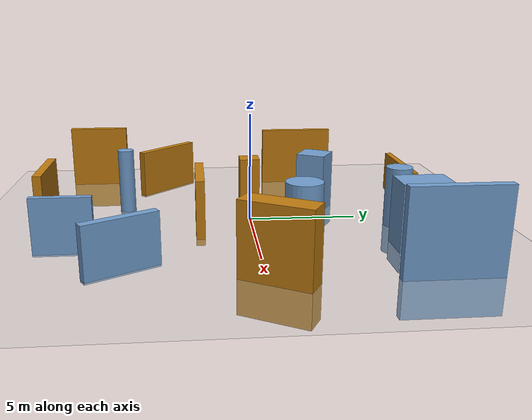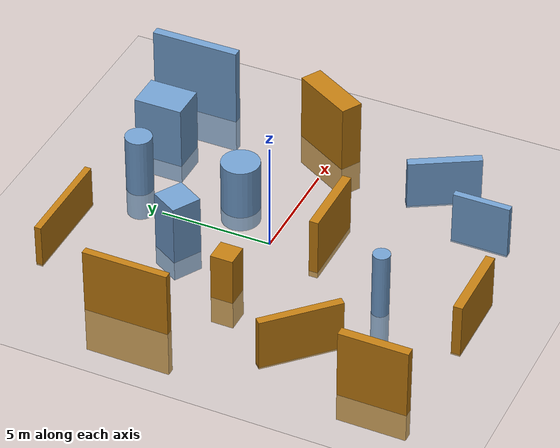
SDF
<sdf version="1.7">
 <world name="default">
  <light name="sun" type="directional">
   <pose>0 0 10 0 -0 0</pose>
   <diffuse>0.8 0.8 0.8 1</diffuse>
   <specular>0.2 0.2 0.2 1</specular>
   <attenuation>
    <range>1000</range>
    <constant>0.9</constant>
    <linear>0.01</linear>
    <quadratic>0.001</quadratic>
   </attenuation>
   <direction>-0.5 0.1 -0.9</direction>
   <spot><inner_angle>0</inner_angle><outer_angle>0</outer_angle><falloff>0</falloff></spot>
  </light>
  <model name="ground_plane">
   <static>1</static>
   <link name="link">
    <collision name="collision">
     <geometry><plane><normal>0 0 1</normal><size>100 100</size></plane></geometry>
     <surface><friction><ode><mu>100</mu><mu2>50</mu2></ode></friction></surface>
    </collision>
    <visual name="visual">
     <cast_shadows>0</cast_shadows>
     <geometry><plane><normal>0 0 1</normal><size>100 100</size></plane></geometry>
     <material>
      <script><uri>file://media/materials/scripts/gazebo.material</uri><name>Gazebo/Grey</name></script>
     </material>
    </visual>
   </link>
  </model>
  <gravity>0 0 -9.8</gravity>
  <magnetic_field>6e-06 2.3e-05 -4.2e-05</magnetic_field>
  <atmosphere type="adiabatic"/>
  <physics name="default_physics" default="0" type="ode">
   <max_step_size>0.001</max_step_size>
   <real_time_factor>1</real_time_factor>
   <real_time_update_rate>1000</real_time_update_rate>
  </physics>
  <scene><ambient>0.4 0.4 0.4 1</ambient><background>0.7 0.7 0.7 1</background><shadows>1</shadows></scene>
  <spherical_coordinates>
   <surface_model>EARTH_WGS84</surface_model>
   <latitude_deg>0</latitude_deg>
   <longitude_deg>0</longitude_deg>
   <elevation>0</elevation>
   <heading_deg>0</heading_deg>
  </spherical_coordinates>
  <model name="wall_orange_1">
   <static>1</static>
   <link name="link">
    <inertial>
     <mass>1</mass>
     <inertia><ixx>0.145833</ixx><ixy>0</ixy><ixz>0</ixz><iyy>0.145833</iyy><iyz>0</iyz><izz>0.125</izz></inertia>
    </inertial>
    <visual name="visual">
     <geometry><box><size>4.5 0.3 2</size></box></geometry>
     <material>
      <script><name>Gazebo/Grey</name><uri>file://media/materials/scripts/gazebo.material</uri></script>
      <ambient>0.757 0.49 0.067 1</ambient>
      <diffuse>0.7 0.7 0.7 1</diffuse>
      <specular>0.01 0.01 0.01 1</specular>
      <emissive>0 0 0 1</emissive>
     </material>
    </visual>
    <collision name="collision">
     <geometry><box><size>4.5 0.3 2</size></box></geometry>
     <surface>
      <friction>
       <ode><mu>1</mu><mu2>1</mu2><fdir1>0 0 0</fdir1><slip1>0</slip1><slip2>0</slip2></ode>
       <torsional>
        <coefficient>1</coefficient>
        <patch_radius>0</patch_radius>
        <surface_radius>0</surface_radius>
        <use_patch_radius>1</use_patch_radius>
        <ode><slip>0</slip></ode>
       </torsional>
      </friction>
      <bounce><restitution_coefficient>0</restitution_coefficient><threshold>1e+06</threshold></bounce>
      <contact>
       <collide_without_contact>0</collide_without_contact>
       <collide_without_contact_bitmask>1</collide_without_contact_bitmask>
       <collide_bitmask>1</collide_bitmask>
       <ode>
        <soft_cfm>0</soft_cfm>
        <soft_erp>0.2</soft_erp>
        <kp>1e+13</kp>
        <kd>1</kd>
        <max_vel>0.01</max_vel>
        <min_depth>0</min_depth>
       </ode>
       <bullet>
        <split_impulse>1</split_impulse>
        <split_impulse_penetration_threshold>-0.01</split_impulse_penetration_threshold>
        <soft_cfm>0</soft_cfm>
        <soft_erp>0.2</soft_erp>
        <kp>1e+13</kp>
        <kd>1</kd>
       </bullet>
      </contact>
     </surface>
    </collision>
   </link>
   <pose>-2.91539 8.15887 0.9 0 -0 0</pose>
  </model>
  <model name="wall_blue_2">
   <static>1</static>
   <link name="link">
    <inertial>
     <mass>1</mass>
     <inertia><ixx>0.145833</ixx><ixy>0</ixy><ixz>0</ixz><iyy>0.145833</iyy><iyz>0</iyz><izz>0.125</izz></inertia>
    </inertial>
    <visual name="visual">
     <geometry><box><size>4 0.4 5.22872</size></box></geometry>
     <material>
      <script><name>Gazebo/Grey</name><uri>file://media/materials/scripts/gazebo.material</uri></script>
      <ambient>0.447 0.624 0.812 1</ambient>
      <diffuse>0.7 0.7 0.7 1</diffuse>
      <specular>0.01 0.01 0.01 1</specular>
      <emissive>0 0 0 1</emissive>
     </material>
    </visual>
    <collision name="collision">
     <geometry><box><size>4 0.4 5.22872</size></box></geometry>
     <surface>
      <friction>
       <ode><mu>1</mu><mu2>1</mu2><fdir1>0 0 0</fdir1><slip1>0</slip1><slip2>0</slip2></ode>
       <torsional>
        <coefficient>1</coefficient>
        <patch_radius>0</patch_radius>
        <surface_radius>0</surface_radius>
        <use_patch_radius>1</use_patch_radius>
        <ode><slip>0</slip></ode>
       </torsional>
      </friction>
      <bounce><restitution_coefficient>0</restitution_coefficient><threshold>1e+06</threshold></bounce>
      <contact>
       <collide_without_contact>0</collide_without_contact>
       <collide_without_contact_bitmask>1</collide_without_contact_bitmask>
       <collide_bitmask>1</collide_bitmask>
       <ode>
        <soft_cfm>0</soft_cfm>
        <soft_erp>0.2</soft_erp>
        <kp>1e+13</kp>
        <kd>1</kd>
        <max_vel>0.01</max_vel>
        <min_depth>0</min_depth>
       </ode>
       <bullet>
        <split_impulse>1</split_impulse>
        <split_impulse_penetration_threshold>-0.01</split_impulse_penetration_threshold>
        <soft_cfm>0</soft_cfm>
        <soft_erp>0.2</soft_erp>
        <kp>1e+13</kp>
        <kd>1</kd>
       </bullet>
      </contact>
     </surface>
    </collision>
   </link>
   <pose>7.36889 6.97436 1 0 -0 1.5708</pose>
  </model>
  <model name="cube_orange_7">
   <static>1</static>
   <link name="link">
    <inertial>
     <mass>1</mass>
     <inertia><ixx>0.145833</ixx><ixy>0</ixy><ixz>0</ixz><iyy>0.145833</iyy><iyz>0</iyz><izz>0.125</izz></inertia>
    </inertial>
    <visual name="visual">
     <geometry><box><size>1 1 3.5129</size></box></geometry>
     <material>
      <script><name>Gazebo/Grey</name><uri>file://media/materials/scripts/gazebo.material</uri></script>
      <ambient>0.757 0.49 0.067 1</ambient>
      <diffuse>0.7 0.7 0.7 1</diffuse>
      <specular>0.01 0.01 0.01 1</specular>
      <emissive>0 0 0 1</emissive>
     </material>
    </visual>
    <collision name="collision">
     <geometry><box><size>1 1 3.5129</size></box></geometry>
     <surface>
      <friction>
       <ode><mu>1</mu><mu2>1</mu2><fdir1>0 0 0</fdir1><slip1>0</slip1><slip2>0</slip2></ode>
       <torsional>
        <coefficient>1</coefficient>
        <patch_radius>0</patch_radius>
        <surface_radius>0</surface_radius>
        <use_patch_radius>1</use_patch_radius>
        <ode><slip>0</slip></ode>
       </torsional>
      </friction>
      <bounce><restitution_coefficient>0</restitution_coefficient><threshold>1e+06</threshold></bounce>
      <contact>
       <collide_without_contact>0</collide_without_contact>
       <collide_without_contact_bitmask>1</collide_without_contact_bitmask>
       <collide_bitmask>1</collide_bitmask>
       <ode>
        <soft_cfm>0</soft_cfm>
        <soft_erp>0.2</soft_erp>
        <kp>1e+13</kp>
        <kd>1</kd>
        <max_vel>0.01</max_vel>
        <min_depth>0</min_depth>
       </ode>
       <bullet>
        <split_impulse>1</split_impulse>
        <split_impulse_penetration_threshold>-0.01</split_impulse_penetration_threshold>
        <soft_cfm>0</soft_cfm>
        <soft_erp>0.2</soft_erp>
        <kp>1e+13</kp>
        <kd>1</kd>
       </bullet>
      </contact>
     </surface>
    </collision>
   </link>
   <pose>-3.58865 0.273629 0.4 0 -0 0</pose>
  </model>
  <model name="box_blue_8">
   <static>1</static>
   <link name="link">
    <inertial>
     <mass>1</mass>
     <inertia><ixx>0.145833</ixx><ixy>0</ixy><ixz>0</ixz><iyy>0.145833</iyy><iyz>0</iyz><izz>0.125</izz></inertia>
    </inertial>
    <visual name="visual">
     <geometry><box><size>1.39471 1.35582 3.70616</size></box></geometry>
     <material>
      <script><name>Gazebo/Grey</name><uri>file://media/materials/scripts/gazebo.material</uri></script>
      <ambient>0.447 0.624 0.812 1</ambient>
      <diffuse>0.7 0.7 0.7 1</diffuse>
      <specular>0.01 0.01 0.01 1</specular>
      <emissive>0 0 0 1</emissive>
     </material>
    </visual>
    <collision name="collision">
     <geometry><box><size>1.39471 1.35582 3.70616</size></box></geometry>
     <surface>
      <friction>
       <ode><mu>1</mu><mu2>1</mu2><fdir1>0 0 0</fdir1><slip1>0</slip1><slip2>0</slip2></ode>
       <torsional>
        <coefficient>1</coefficient>
        <patch_radius>0</patch_radius>
        <surface_radius>0</surface_radius>
        <use_patch_radius>1</use_patch_radius>
        <ode><slip>0</slip></ode>
       </torsional>
      </friction>
      <bounce><restitution_coefficient>0</restitution_coefficient><threshold>1e+06</threshold></bounce>
      <contact>
       <collide_without_contact>0</collide_without_contact>
       <collide_without_contact_bitmask>1</collide_without_contact_bitmask>
       <collide_bitmask>1</collide_bitmask>
       <ode>
        <soft_cfm>0</soft_cfm>
        <soft_erp>0.2</soft_erp>
        <kp>1e+13</kp>
        <kd>1</kd>
        <max_vel>0.01</max_vel>
        <min_depth>0</min_depth>
       </ode>
       <bullet>
        <split_impulse>1</split_impulse>
        <split_impulse_penetration_threshold>-0.01</split_impulse_penetration_threshold>
        <soft_cfm>0</soft_cfm>
        <soft_erp>0.2</soft_erp>
        <kp>1e+13</kp>
        <kd>1</kd>
       </bullet>
      </contact>
     </surface>
    </collision>
   </link>
   <pose>-1.82481 3.37336 0.9 0 -0 1.0472</pose>
  </model>
  <model name="cylinder_blue_10">
   <static>1</static>
   <link name="link">
    <inertial>
     <mass>1</mass>
     <inertia><ixx>0.145833</ixx><ixy>0</ixy><ixz>0</ixz><iyy>0.145833</iyy><iyz>0</iyz><izz>0.125</izz></inertia>
    </inertial>
    <visual name="visual">
     <geometry><cylinder><radius>0.859905</radius><length>3.05437</length></cylinder></geometry>
     <material>
      <script><name>Gazebo/Grey</name><uri>file://media/materials/scripts/gazebo.material</uri></script>
      <ambient>0.447 0.624 0.812 1</ambient>
      <diffuse>0.7 0.7 0.7 1</diffuse>
      <specular>0.01 0.01 0.01 1</specular>
      <emissive>0 0 0 1</emissive>
     </material>
    </visual>
    <collision name="collision">
     <geometry><cylinder><radius>0.859905</radius><length>3.05437</length></cylinder></geometry>
     <surface>
      <friction>
       <ode><mu>1</mu><mu2>1</mu2><fdir1>0 0 0</fdir1><slip1>0</slip1><slip2>0</slip2></ode>
       <torsional>
        <coefficient>1</coefficient>
        <patch_radius>0</patch_radius>
        <surface_radius>0</surface_radius>
        <use_patch_radius>1</use_patch_radius>
        <ode><slip>0</slip></ode>
       </torsional>
      </friction>
      <bounce><restitution_coefficient>0</restitution_coefficient><threshold>1e+06</threshold></bounce>
      <contact>
       <collide_without_contact>0</collide_without_contact>
       <collide_without_contact_bitmask>1</collide_without_contact_bitmask>
       <collide_bitmask>1</collide_bitmask>
       <ode>
        <soft_cfm>0</soft_cfm>
        <soft_erp>0.2</soft_erp>
        <kp>1e+13</kp>
        <kd>1</kd>
        <max_vel>0.01</max_vel>
        <min_depth>0</min_depth>
       </ode>
       <bullet>
        <split_impulse>1</split_impulse>
        <split_impulse_penetration_threshold>-0.01</split_impulse_penetration_threshold>
        <soft_cfm>0</soft_cfm>
        <soft_erp>0.2</soft_erp>
        <kp>1e+13</kp>
        <kd>1</kd>
       </bullet>
      </contact>
     </surface>
    </collision>
   </link>
   <pose>1.89929 2.24516 0.8 0 -0 0</pose>
  </model>
  <model name="wall_blue_12">
   <static>1</static>
   <link name="link">
    <inertial>
     <mass>1</mass>
     <inertia><ixx>0.145833</ixx><ixy>0</ixy><ixz>0</ixz><iyy>0.145833</iyy><iyz>0</iyz><izz>0.125</izz></inertia>
    </inertial>
    <visual name="visual">
     <geometry><box><size>2.52011 0.3 2.5</size></box></geometry>
     <material>
      <script><name>Gazebo/Grey</name><uri>file://media/materials/scripts/gazebo.material</uri></script>
      <ambient>0.447 0.624 0.812 1</ambient>
      <diffuse>0.7 0.7 0.7 1</diffuse>
      <specular>0.01 0.01 0.01 1</specular>
      <emissive>0 0 0 1</emissive>
     </material>
    </visual>
    <collision name="collision">
     <geometry><box><size>2.52011 0.3 2.5</size></box></geometry>
     <surface>
      <friction>
       <ode><mu>1</mu><mu2>1</mu2><fdir1>0 0 0</fdir1><slip1>0</slip1><slip2>0</slip2></ode>
       <torsional>
        <coefficient>1</coefficient>
        <patch_radius>0</patch_radius>
        <surface_radius>0</surface_radius>
        <use_patch_radius>1</use_patch_radius>
        <ode><slip>0</slip></ode>
       </torsional>
      </friction>
      <bounce><restitution_coefficient>0</restitution_coefficient><threshold>1e+06</threshold></bounce>
      <contact>
       <collide_without_contact>0</collide_without_contact>
       <collide_without_contact_bitmask>1</collide_without_contact_bitmask>
       <collide_bitmask>1</collide_bitmask>
       <ode>
        <soft_cfm>0</soft_cfm>
        <soft_erp>0.2</soft_erp>
        <kp>1e+13</kp>
        <kd>1</kd>
        <max_vel>0.01</max_vel>
        <min_depth>0</min_depth>
       </ode>
       <bullet>
        <split_impulse>1</split_impulse>
        <split_impulse_penetration_threshold>-0.01</split_impulse_penetration_threshold>
        <soft_cfm>0</soft_cfm>
        <soft_erp>0.2</soft_erp>
        <kp>1e+13</kp>
        <kd>1</kd>
       </bullet>
      </contact>
     </surface>
    </collision>
   </link>
   <pose>3.65135 -8.01208 1.15 0 -0 1.5708</pose>
  </model>
  <model name="wall_blue_14">
   <static>1</static>
   <link name="link">
    <inertial>
     <mass>1</mass>
     <inertia><ixx>0.145833</ixx><ixy>0</ixy><ixz>0</ixz><iyy>0.145833</iyy><iyz>0</iyz><izz>0.125</izz></inertia>
    </inertial>
    <visual name="visual">
     <geometry><box><size>3.2 0.4 2.3</size></box></geometry>
     <material>
      <script><name>Gazebo/Grey</name><uri>file://media/materials/scripts/gazebo.material</uri></script>
      <ambient>0.447 0.624 0.812 1</ambient>
      <diffuse>0.7 0.7 0.7 1</diffuse>
      <specular>0.01 0.01 0.01 1</specular>
      <emissive>0 0 0 1</emissive>
     </material>
    </visual>
    <collision name="collision">
     <geometry><box><size>3.2 0.4 2.3</size></box></geometry>
     <surface>
      <friction>
       <ode><mu>1</mu><mu2>1</mu2><fdir1>0 0 0</fdir1><slip1>0</slip1><slip2>0</slip2></ode>
       <torsional>
        <coefficient>1</coefficient>
        <patch_radius>0</patch_radius>
        <surface_radius>0</surface_radius>
        <use_patch_radius>1</use_patch_radius>
        <ode><slip>0</slip></ode>
       </torsional>
      </friction>
      <bounce><restitution_coefficient>0</restitution_coefficient><threshold>1e+06</threshold></bounce>
      <contact>
       <collide_without_contact>0</collide_without_contact>
       <collide_without_contact_bitmask>1</collide_without_contact_bitmask>
       <collide_bitmask>1</collide_bitmask>
       <ode>
        <soft_cfm>0</soft_cfm>
        <soft_erp>0.2</soft_erp>
        <kp>1e+13</kp>
        <kd>1</kd>
        <max_vel>0.01</max_vel>
        <min_depth>0</min_depth>
       </ode>
       <bullet>
        <split_impulse>1</split_impulse>
        <split_impulse_penetration_threshold>-0.01</split_impulse_penetration_threshold>
        <soft_cfm>0</soft_cfm>
        <soft_erp>0.2</soft_erp>
        <kp>1e+13</kp>
        <kd>1</kd>
       </bullet>
      </contact>
     </surface>
    </collision>
   </link>
   <pose>5.7975 -5.45618 1.05 0 -0 2.0944</pose>
  </model>
  <model name="wall_orange_15">
   <static>1</static>
   <link name="link">
    <inertial>
     <mass>1</mass>
     <inertia><ixx>0.145833</ixx><ixy>0</ixy><ixz>0</ixz><iyy>0.145833</iyy><iyz>0</iyz><izz>0.125</izz></inertia>
    </inertial>
    <visual name="visual">
     <geometry><box><size>3.6311 0.35 2.4</size></box></geometry>
     <material>
      <script><name>Gazebo/Grey</name><uri>file://media/materials/scripts/gazebo.material</uri></script>
      <ambient>0.757 0.49 0.067 1</ambient>
      <diffuse>0.7 0.7 0.7 1</diffuse>
      <specular>0.01 0.01 0.01 1</specular>
      <emissive>0 0 0 1</emissive>
     </material>
    </visual>
    <collision name="collision">
     <geometry><box><size>3.6311 0.35 2.4</size></box></geometry>
     <surface>
      <friction>
       <ode><mu>1</mu><mu2>1</mu2><fdir1>0 0 0</fdir1><slip1>0</slip1><slip2>0</slip2></ode>
       <torsional>
        <coefficient>1</coefficient>
        <patch_radius>0</patch_radius>
        <surface_radius>0</surface_radius>
        <use_patch_radius>1</use_patch_radius>
        <ode><slip>0</slip></ode>
       </torsional>
      </friction>
      <bounce><restitution_coefficient>0</restitution_coefficient><threshold>1e+06</threshold></bounce>
      <contact>
       <collide_without_contact>0</collide_without_contact>
       <collide_without_contact_bitmask>1</collide_without_contact_bitmask>
       <collide_bitmask>1</collide_bitmask>
       <ode>
        <soft_cfm>0</soft_cfm>
        <soft_erp>0.2</soft_erp>
        <kp>1e+13</kp>
        <kd>1</kd>
        <max_vel>0.01</max_vel>
        <min_depth>0</min_depth>
       </ode>
       <bullet>
        <split_impulse>1</split_impulse>
        <split_impulse_penetration_threshold>-0.01</split_impulse_penetration_threshold>
        <soft_cfm>0</soft_cfm>
        <soft_erp>0.2</soft_erp>
        <kp>1e+13</kp>
        <kd>1</kd>
       </bullet>
      </contact>
     </surface>
    </collision>
   </link>
   <pose>-5.82883 -4.03476 1.1 0 0 -0.7854</pose>
  </model>
  <model name="wall_orange_17">
   <static>1</static>
   <link name="link">
    <inertial>
     <mass>1</mass>
     <inertia><ixx>0.145833</ixx><ixy>0</ixy><ixz>0</ixz><iyy>0.145833</iyy><iyz>0</iyz><izz>0.125</izz></inertia>
    </inertial>
    <visual name="visual">
     <geometry><box><size>3 0.4 4.48878</size></box></geometry>
     <material>
      <script><name>Gazebo/Grey</name><uri>file://media/materials/scripts/gazebo.material</uri></script>
      <ambient>0.757 0.49 0.067 1</ambient>
      <diffuse>0.7 0.7 0.7 1</diffuse>
      <specular>0.01 0.01 0.01 1</specular>
      <emissive>0 0 0 1</emissive>
     </material>
    </visual>
    <collision name="collision">
     <geometry><box><size>3 0.4 4.48878</size></box></geometry>
     <surface>
      <friction>
       <ode><mu>1</mu><mu2>1</mu2><fdir1>0 0 0</fdir1><slip1>0</slip1><slip2>0</slip2></ode>
       <torsional>
        <coefficient>1</coefficient>
        <patch_radius>0</patch_radius>
        <surface_radius>0</surface_radius>
        <use_patch_radius>1</use_patch_radius>
        <ode><slip>0</slip></ode>
       </torsional>
      </friction>
      <bounce><restitution_coefficient>0</restitution_coefficient><threshold>1e+06</threshold></bounce>
      <contact>
       <collide_without_contact>0</collide_without_contact>
       <collide_without_contact_bitmask>1</collide_without_contact_bitmask>
       <collide_bitmask>1</collide_bitmask>
       <ode>
        <soft_cfm>0</soft_cfm>
        <soft_erp>0.2</soft_erp>
        <kp>1e+13</kp>
        <kd>1</kd>
        <max_vel>0.01</max_vel>
        <min_depth>0</min_depth>
       </ode>
       <bullet>
        <split_impulse>1</split_impulse>
        <split_impulse_penetration_threshold>-0.01</split_impulse_penetration_threshold>
        <soft_cfm>0</soft_cfm>
        <soft_erp>0.2</soft_erp>
        <kp>1e+13</kp>
        <kd>1</kd>
       </bullet>
      </contact>
     </surface>
    </collision>
   </link>
   <pose>-7.184 -7.82801 0.9 0 -0 1.5708</pose>
  </model>
  <model name="cylinder_blue_18">
   <static>1</static>
   <link name="link">
    <inertial>
     <mass>1</mass>
     <inertia><ixx>0.145833</ixx><ixy>0</ixy><ixz>0</ixz><iyy>0.145833</iyy><iyz>0</iyz><izz>0.125</izz></inertia>
    </inertial>
    <visual name="visual">
     <geometry><cylinder><radius>0.375817</radius><length>4.63427</length></cylinder></geometry>
     <material>
      <script><name>Gazebo/Grey</name><uri>file://media/materials/scripts/gazebo.material</uri></script>
      <ambient>0.447 0.624 0.812 1</ambient>
      <diffuse>0.7 0.7 0.7 1</diffuse>
      <specular>0.01 0.01 0.01 1</specular>
      <emissive>0 0 0 1</emissive>
     </material>
    </visual>
    <collision name="collision">
     <geometry><cylinder><radius>0.375817</radius><length>4.63427</length></cylinder></geometry>
     <surface>
      <friction>
       <ode><mu>1</mu><mu2>1</mu2><fdir1>0 0 0</fdir1><slip1>0</slip1><slip2>0</slip2></ode>
       <torsional>
        <coefficient>1</coefficient>
        <patch_radius>0</patch_radius>
        <surface_radius>0</surface_radius>
        <use_patch_radius>1</use_patch_radius>
        <ode><slip>0</slip></ode>
       </torsional>
      </friction>
      <bounce><restitution_coefficient>0</restitution_coefficient><threshold>1e+06</threshold></bounce>
      <contact>
       <collide_without_contact>0</collide_without_contact>
       <collide_without_contact_bitmask>1</collide_without_contact_bitmask>
       <collide_bitmask>1</collide_bitmask>
       <ode>
        <soft_cfm>0</soft_cfm>
        <soft_erp>0.2</soft_erp>
        <kp>1e+13</kp>
        <kd>1</kd>
        <max_vel>0.01</max_vel>
        <min_depth>0</min_depth>
       </ode>
       <bullet>
        <split_impulse>1</split_impulse>
        <split_impulse_penetration_threshold>-0.01</split_impulse_penetration_threshold>
        <soft_cfm>0</soft_cfm>
        <soft_erp>0.2</soft_erp>
        <kp>1e+13</kp>
        <kd>1</kd>
       </bullet>
      </contact>
     </surface>
    </collision>
   </link>
   <pose>-2.0076 -5.88598 0.7 0 -0 0</pose>
  </model>
  <model name="box_orange_19">
   <static>1</static>
   <link name="link">
    <inertial>
     <mass>1</mass>
     <inertia><ixx>0.145833</ixx><ixy>0</ixy><ixz>0</ixz><iyy>0.145833</iyy><iyz>0</iyz><izz>0.125</izz></inertia>
    </inertial>
    <visual name="visual">
     <geometry><box><size>3 1 4.59009</size></box></geometry>
     <material>
      <script><name>Gazebo/Grey</name><uri>file://media/materials/scripts/gazebo.material</uri></script>
      <ambient>0.757 0.49 0.067 1</ambient>
      <diffuse>0.7 0.7 0.7 1</diffuse>
      <specular>0.01 0.01 0.01 1</specular>
      <emissive>0 0 0 1</emissive>
     </material>
    </visual>
    <collision name="collision">
     <geometry><box><size>3 1 4.59009</size></box></geometry>
     <surface>
      <friction>
       <ode><mu>1</mu><mu2>1</mu2><fdir1>0 0 0</fdir1><slip1>0</slip1><slip2>0</slip2></ode>
       <torsional>
        <coefficient>1</coefficient>
        <patch_radius>0</patch_radius>
        <surface_radius>0</surface_radius>
        <use_patch_radius>1</use_patch_radius>
        <ode><slip>0</slip></ode>
       </torsional>
      </friction>
      <bounce><restitution_coefficient>0</restitution_coefficient><threshold>1e+06</threshold></bounce>
      <contact>
       <collide_without_contact>0</collide_without_contact>
       <collide_without_contact_bitmask>1</collide_without_contact_bitmask>
       <collide_bitmask>1</collide_bitmask>
       <ode>
        <soft_cfm>0</soft_cfm>
        <soft_erp>0.2</soft_erp>
        <kp>1e+13</kp>
        <kd>1</kd>
        <max_vel>0.01</max_vel>
        <min_depth>0</min_depth>
       </ode>
       <bullet>
        <split_impulse>1</split_impulse>
        <split_impulse_penetration_threshold>-0.01</split_impulse_penetration_threshold>
        <soft_cfm>0</soft_cfm>
        <soft_erp>0.2</soft_erp>
        <kp>1e+13</kp>
        <kd>1</kd>
       </bullet>
      </contact>
     </surface>
    </collision>
   </link>
   <pose>7.16927 0.41528 0.8 0 -0 1.0472</pose>
  </model>
  <model name="wall_orange_21">
   <static>1</static>
   <link name="link">
    <inertial>
     <mass>1</mass>
     <inertia><ixx>0.145833</ixx><ixy>0</ixy><ixz>0</ixz><iyy>0.145833</iyy><iyz>0</iyz><izz>0.125</izz></inertia>
    </inertial>
    <visual name="visual">
     <geometry><box><size>3.49821 0.4 2.5</size></box></geometry>
     <material>
      <script><name>Gazebo/Grey</name><uri>file://media/materials/scripts/gazebo.material</uri></script>
      <ambient>0.757 0.49 0.067 1</ambient>
      <diffuse>0.7 0.7 0.7 1</diffuse>
      <specular>0.01 0.01 0.01 1</specular>
      <emissive>0 0 0 1</emissive>
     </material>
    </visual>
    <collision name="collision">
     <geometry><box><size>3.49821 0.4 2.5</size></box></geometry>
     <surface>
      <friction>
       <ode><mu>1</mu><mu2>1</mu2><fdir1>0 0 0</fdir1><slip1>0</slip1><slip2>0</slip2></ode>
       <torsional>
        <coefficient>1</coefficient>
        <patch_radius>0</patch_radius>
        <surface_radius>0</surface_radius>
        <use_patch_radius>1</use_patch_radius>
        <ode><slip>0</slip></ode>
       </torsional>
      </friction>
      <bounce><restitution_coefficient>0</restitution_coefficient><threshold>1e+06</threshold></bounce>
      <contact>
       <collide_without_contact>0</collide_without_contact>
       <collide_without_contact_bitmask>1</collide_without_contact_bitmask>
       <collide_bitmask>1</collide_bitmask>
       <ode>
        <soft_cfm>0</soft_cfm>
        <soft_erp>0.2</soft_erp>
        <kp>1e+13</kp>
        <kd>1</kd>
        <max_vel>0.01</max_vel>
        <min_depth>0</min_depth>
       </ode>
       <bullet>
        <split_impulse>1</split_impulse>
        <split_impulse_penetration_threshold>-0.01</split_impulse_penetration_threshold>
        <soft_cfm>0</soft_cfm>
        <soft_erp>0.2</soft_erp>
        <kp>1e+13</kp>
        <kd>1</kd>
       </bullet>
      </contact>
     </surface>
    </collision>
   </link>
   <pose>-1.39717 -9.67137 1.15 0 -0 0</pose>
  </model>
  <model name="cylinder_blue_18_clone">
   <static>1</static>
   <link name="link">
    <inertial>
     <mass>1</mass>
     <inertia><ixx>0.145833</ixx><ixy>0</ixy><ixz>0</ixz><iyy>0.145833</iyy><iyz>0</iyz><izz>0.125</izz></inertia>
    </inertial>
    <visual name="visual">
     <geometry><cylinder><radius>0.6</radius><length>4.04952</length></cylinder></geometry>
     <material>
      <script><name>Gazebo/Grey</name><uri>file://media/materials/scripts/gazebo.material</uri></script>
      <ambient>0.447 0.624 0.812 1</ambient>
      <diffuse>0.7 0.7 0.7 1</diffuse>
      <specular>0.01 0.01 0.01 1</specular>
      <emissive>0 0 0 1</emissive>
     </material>
    </visual>
    <collision name="collision">
     <geometry><cylinder><radius>0.6</radius><length>4.04952</length></cylinder></geometry>
     <surface>
      <friction>
       <ode><mu>1</mu><mu2>1</mu2><fdir1>0 0 0</fdir1><slip1>0</slip1><slip2>0</slip2></ode>
       <torsional>
        <coefficient>1</coefficient>
        <patch_radius>0</patch_radius>
        <surface_radius>0</surface_radius>
        <use_patch_radius>1</use_patch_radius>
        <ode><slip>0</slip></ode>
       </torsional>
      </friction>
      <bounce><restitution_coefficient>0</restitution_coefficient><threshold>1e+06</threshold></bounce>
      <contact>
       <collide_without_contact>0</collide_without_contact>
       <collide_without_contact_bitmask>1</collide_without_contact_bitmask>
       <collide_bitmask>1</collide_bitmask>
       <ode>
        <soft_cfm>0</soft_cfm>
        <soft_erp>0.2</soft_erp>
        <kp>1e+13</kp>
        <kd>1</kd>
        <max_vel>0.01</max_vel>
        <min_depth>0</min_depth>
       </ode>
       <bullet>
        <split_impulse>1</split_impulse>
        <split_impulse_penetration_threshold>-0.01</split_impulse_penetration_threshold>
        <soft_cfm>0</soft_cfm>
        <soft_erp>0.2</soft_erp>
        <kp>1e+13</kp>
        <kd>1</kd>
       </bullet>
      </contact>
     </surface>
    </collision>
   </link>
   <pose>1.22896 6.70791 0.7 0 -0 0</pose>
  </model>
  <model name="cube_orange_7_clone">
   <static>1</static>
   <link name="link">
    <inertial>
     <mass>1</mass>
     <inertia><ixx>0.145833</ixx><ixy>0</ixy><ixz>0</ixz><iyy>0.145833</iyy><iyz>0</iyz><izz>0.125</izz></inertia>
    </inertial>
    <visual name="visual">
     <geometry><box><size>0.32521 3.78472 5.16641</size></box></geometry>
     <material>
      <script><name>Gazebo/Grey</name><uri>file://media/materials/scripts/gazebo.material</uri></script>
      <ambient>0.757 0.49 0.067 1</ambient>
      <diffuse>0.7 0.7 0.7 1</diffuse>
      <specular>0.01 0.01 0.01 1</specular>
      <emissive>0 0 0 1</emissive>
     </material>
    </visual>
    <collision name="collision">
     <geometry><box><size>0.32521 3.78472 5.16641</size></box></geometry>
     <surface>
      <friction>
       <ode><mu>1</mu><mu2>1</mu2><fdir1>0 0 0</fdir1><slip1>0</slip1><slip2>0</slip2></ode>
       <torsional>
        <coefficient>1</coefficient>
        <patch_radius>0</patch_radius>
        <surface_radius>0</surface_radius>
        <use_patch_radius>1</use_patch_radius>
        <ode><slip>0</slip></ode>
       </torsional>
      </friction>
      <bounce><restitution_coefficient>0</restitution_coefficient><threshold>1e+06</threshold></bounce>
      <contact>
       <collide_without_contact>0</collide_without_contact>
       <collide_without_contact_bitmask>1</collide_without_contact_bitmask>
       <collide_bitmask>1</collide_bitmask>
       <ode>
        <soft_cfm>0</soft_cfm>
        <soft_erp>0.2</soft_erp>
        <kp>1e+13</kp>
        <kd>1</kd>
        <max_vel>0.01</max_vel>
        <min_depth>0</min_depth>
       </ode>
       <bullet>
        <split_impulse>1</split_impulse>
        <split_impulse_penetration_threshold>-0.01</split_impulse_penetration_threshold>
        <soft_cfm>0</soft_cfm>
        <soft_erp>0.2</soft_erp>
        <kp>1e+13</kp>
        <kd>1</kd>
       </bullet>
      </contact>
     </surface>
    </collision>
   </link>
   <pose>-6.79149 3.21268 0.4 0 -0 0</pose>
  </model>
  <model name="wall_orange_21_clone">
   <static>1</static>
   <link name="link">
    <inertial>
     <mass>1</mass>
     <inertia><ixx>0.145833</ixx><ixy>0</ixy><ixz>0</ixz><iyy>0.145833</iyy><iyz>0</iyz><izz>0.125</izz></inertia>
    </inertial>
    <visual name="visual">
     <geometry><box><size>3.36775 0.4 2.9021</size></box></geometry>
     <material>
      <script><name>Gazebo/Grey</name><uri>file://media/materials/scripts/gazebo.material</uri></script>
      <ambient>0.757 0.49 0.067 1</ambient>
      <diffuse>0.7 0.7 0.7 1</diffuse>
      <specular>0.01 0.01 0.01 1</specular>
      <emissive>0 0 0 1</emissive>
     </material>
    </visual>
    <collision name="collision">
     <geometry><box><size>3.36775 0.4 2.9021</size></box></geometry>
     <surface>
      <friction>
       <ode><mu>1</mu><mu2>1</mu2><fdir1>0 0 0</fdir1><slip1>0</slip1><slip2>0</slip2></ode>
       <torsional>
        <coefficient>1</coefficient>
        <patch_radius>0</patch_radius>
        <surface_radius>0</surface_radius>
        <use_patch_radius>1</use_patch_radius>
        <ode><slip>0</slip></ode>
       </torsional>
      </friction>
      <bounce><restitution_coefficient>0</restitution_coefficient><threshold>1e+06</threshold></bounce>
      <contact>
       <collide_without_contact>0</collide_without_contact>
       <collide_without_contact_bitmask>1</collide_without_contact_bitmask>
       <collide_bitmask>1</collide_bitmask>
       <ode>
        <soft_cfm>0</soft_cfm>
        <soft_erp>0.2</soft_erp>
        <kp>1e+13</kp>
        <kd>1</kd>
        <max_vel>0.01</max_vel>
        <min_depth>0</min_depth>
       </ode>
       <bullet>
        <split_impulse>1</split_impulse>
        <split_impulse_penetration_threshold>-0.01</split_impulse_penetration_threshold>
        <soft_cfm>0</soft_cfm>
        <soft_erp>0.2</soft_erp>
        <kp>1e+13</kp>
        <kd>1</kd>
       </bullet>
      </contact>
     </surface>
    </collision>
   </link>
   <pose>0.839921 -2.37001 1.15 0 -0 0</pose>
  </model>
  <model name="wall_blue_2_clone">
   <static>1</static>
   <link name="link">
    <inertial>
     <mass>1</mass>
     <inertia><ixx>0.145833</ixx><ixy>0</ixy><ixz>0</ixz><iyy>0.145833</iyy><iyz>0</iyz><izz>0.125</izz></inertia>
    </inertial>
    <visual name="visual">
     <geometry><box><size>2.1943 1.60611 3.79245</size></box></geometry>
     <material>
      <script><name>Gazebo/Grey</name><uri>file://media/materials/scripts/gazebo.material</uri></script>
      <ambient>0.447 0.624 0.812 1</ambient>
      <diffuse>0.7 0.7 0.7 1</diffuse>
      <specular>0.01 0.01 0.01 1</specular>
      <emissive>0 0 0 1</emissive>
     </material>
    </visual>
    <collision name="collision">
     <geometry><box><size>2.1943 1.60611 3.79245</size></box></geometry>
     <surface>
      <friction>
       <ode><mu>1</mu><mu2>1</mu2><fdir1>0 0 0</fdir1><slip1>0</slip1><slip2>0</slip2></ode>
       <torsional>
        <coefficient>1</coefficient>
        <patch_radius>0</patch_radius>
        <surface_radius>0</surface_radius>
        <use_patch_radius>1</use_patch_radius>
        <ode><slip>0</slip></ode>
       </torsional>
      </friction>
      <bounce><restitution_coefficient>0</restitution_coefficient><threshold>1e+06</threshold></bounce>
      <contact>
       <collide_without_contact>0</collide_without_contact>
       <collide_without_contact_bitmask>1</collide_without_contact_bitmask>
       <collide_bitmask>1</collide_bitmask>
       <ode>
        <soft_cfm>0</soft_cfm>
        <soft_erp>0.2</soft_erp>
        <kp>1e+13</kp>
        <kd>1</kd>
        <max_vel>0.01</max_vel>
        <min_depth>0</min_depth>
       </ode>
       <bullet>
        <split_impulse>1</split_impulse>
        <split_impulse_penetration_threshold>-0.01</split_impulse_penetration_threshold>
        <soft_cfm>0</soft_cfm>
        <soft_erp>0.2</soft_erp>
        <kp>1e+13</kp>
        <kd>1</kd>
       </bullet>
      </contact>
     </surface>
    </collision>
   </link>
   <pose>4.06653 6.83137 1 0 -0 1.5708</pose>
  </model>
 </world>
</sdf>
